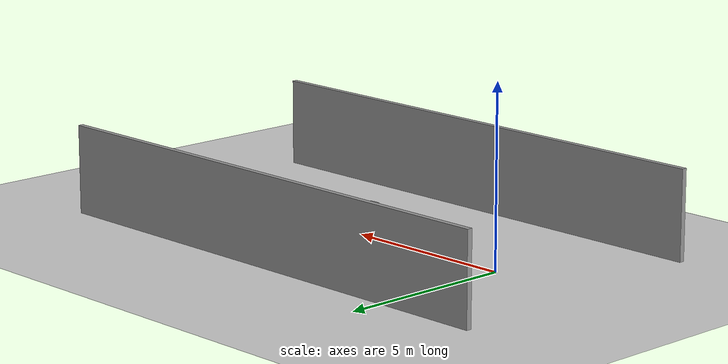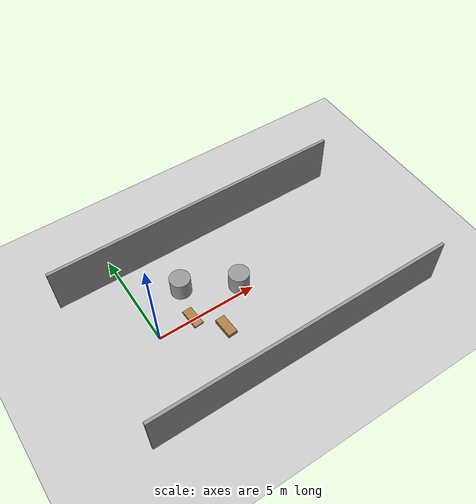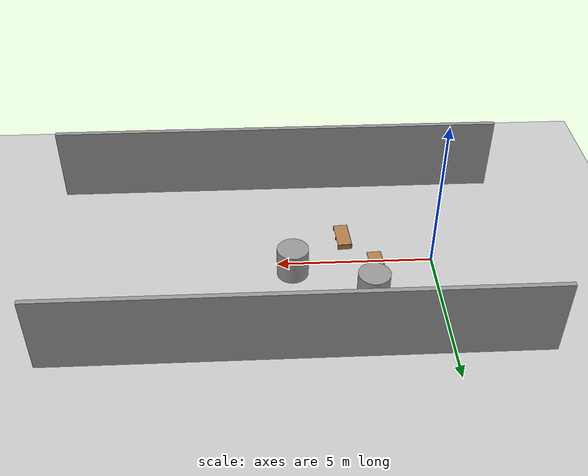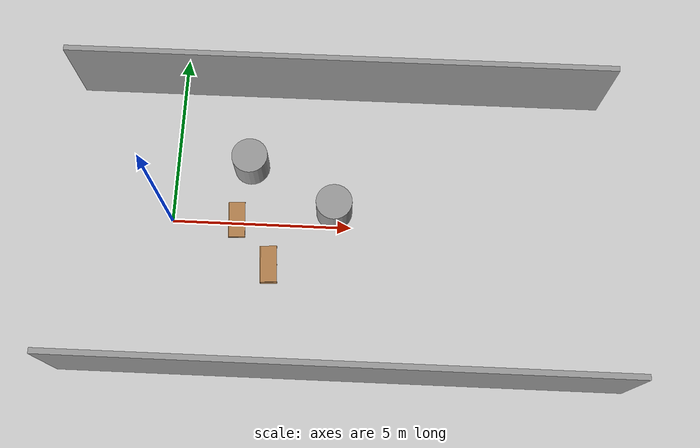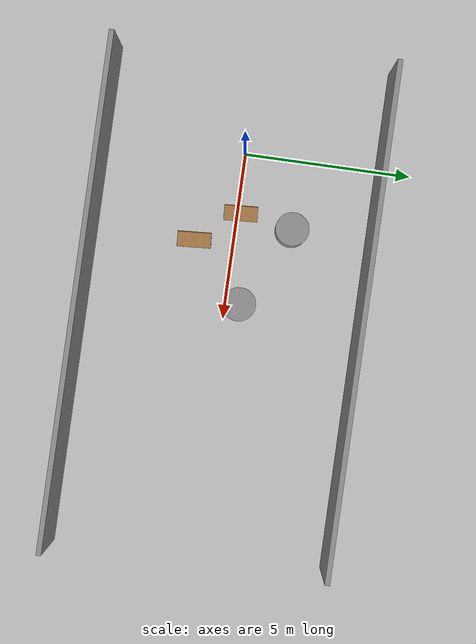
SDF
<sdf version="1.6">
 <world name="default">
  <light name="sun" type="directional">
   <pose>0 0 10 0 -0 0</pose>
   <diffuse>0.8 0.8 0.8 1</diffuse>
   <specular>0.2 0.2 0.2 1</specular>
   <attenuation>
    <range>1000</range>
    <constant>0.9</constant>
    <linear>0.01</linear>
    <quadratic>0.001</quadratic>
   </attenuation>
   <direction>-0.5 0.1 -0.9</direction>
  </light>
  <model name="ground_plane">
   <static>1</static>
   <link name="link">
    <collision name="collision">
     <geometry><plane><normal>0 0 1</normal><size>100 100</size></plane></geometry>
     <surface>
      <contact><collide_bitmask>65535</collide_bitmask></contact>
      <friction><ode><mu>100</mu><mu2>50</mu2></ode></friction>
     </surface>
    </collision>
    <visual name="visual">
     <cast_shadows>0</cast_shadows>
     <geometry><plane><normal>0 0 1</normal><size>100 100</size></plane></geometry>
     <material>
      <script><uri>file://media/materials/scripts/gazebo.material</uri><name>Gazebo/Grey</name></script>
     </material>
    </visual>
   </link>
  </model>
  <gravity>0 0 -9.8</gravity>
  <magnetic_field>6e-06 2.3e-05 -4.2e-05</magnetic_field>
  <atmosphere type="adiabatic"/>
  <physics name="default_physics" default="0" type="ode">
   <max_step_size>0.001</max_step_size>
   <real_time_factor>1</real_time_factor>
   <real_time_update_rate>1000</real_time_update_rate>
  </physics>
  <scene><ambient>0.4 0.4 0.4 1</ambient><background>0.7 0.7 0.7 1</background><shadows>1</shadows></scene>
  <audio><device>default</device></audio>
  <spherical_coordinates>
   <surface_model>EARTH_WGS84</surface_model>
   <latitude_deg>0</latitude_deg>
   <longitude_deg>0</longitude_deg>
   <elevation>0</elevation>
   <heading_deg>0</heading_deg>
  </spherical_coordinates>
  <model name="Untitled">
   <pose>4.53239 4.00567 0 0 -0 0</pose>
   <link name="Wall_1">
    <collision name="Wall_1_Collision">
     <geometry><box><size>15 0.15 2.5</size></box></geometry>
     <pose>0 0 1.25 0 -0 0</pose>
    </collision>
    <visual name="Wall_1_Visual">
     <pose>0 0 1.25 0 -0 0</pose>
     <geometry><box><size>15 0.15 2.5</size></box></geometry>
     <material>
      <script><uri>file://media/materials/scripts/gazebo.material</uri><name>Gazebo/Grey</name></script>
      <ambient>1 1 1 1</ambient>
     </material>
     <meta><layer>0</layer></meta>
    </visual>
   </link>
   <static>1</static>
  </model>
  <model name="Untitled_0">
   <pose>4.82053 -4.18989 0 0 -0 0</pose>
   <link name="Wall_1">
    <collision name="Wall_1_Collision">
     <geometry><box><size>15 0.15 2.5</size></box></geometry>
     <pose>0 0 1.25 0 -0 0</pose>
    </collision>
    <visual name="Wall_1_Visual">
     <pose>0 0 1.25 0 -0 0</pose>
     <geometry><box><size>15 0.15 2.5</size></box></geometry>
     <material>
      <script><uri>file://media/materials/scripts/gazebo.material</uri><name>Gazebo/Grey</name></script>
      <ambient>1 1 1 1</ambient>
     </material>
     <meta><layer>0</layer></meta>
    </visual>
   </link>
   <static>1</static>
  </model>
  <model name="unit_cylinder">
   <pose>2.10757 1.68367 0.499991 0 -0 0</pose>
   <link name="link">
    <inertial>
     <mass>1</mass>
     <inertia><ixx>0.145833</ixx><ixy>0</ixy><ixz>0</ixz><iyy>0.145833</iyy><iyz>0</iyz><izz>0.125</izz></inertia>
    </inertial>
    <collision name="collision">
     <geometry><cylinder><radius>0.5</radius><length>1</length></cylinder></geometry>
    </collision>
    <visual name="visual">
     <geometry><cylinder><radius>0.5</radius><length>1</length></cylinder></geometry>
     <material>
      <script><name>Gazebo/Grey</name><uri>file://media/materials/scripts/gazebo.material</uri></script>
     </material>
    </visual>
   </link>
  </model>
  <model name="unit_cylinder_1">
   <pose>4.5094 0.431106 0.499998 3e-06 -2e-06 0</pose>
   <link name="link">
    <inertial>
     <mass>1</mass>
     <inertia><ixx>0.145833</ixx><ixy>0</ixy><ixz>0</ixz><iyy>0.145833</iyy><iyz>0</iyz><izz>0.125</izz></inertia>
    </inertial>
    <collision name="collision">
     <geometry><cylinder><radius>0.5</radius><length>1</length></cylinder></geometry>
    </collision>
    <visual name="visual">
     <geometry><cylinder><radius>0.5</radius><length>1</length></cylinder></geometry>
     <material>
      <script><name>Gazebo/Grey</name><uri>file://media/materials/scripts/gazebo.material</uri></script>
     </material>
    </visual>
   </link>
  </model>
  <model name="cabinet">
   <static>1</static>
   <link name="cabinet_bottom_plate">
    <inertial>
     <pose>0 0 -1 0 -0 0</pose>
     <inertia><ixx>2.05</ixx><ixy>0</ixy><ixz>0</ixz><iyy>2.05</iyy><iyz>0</iyz><izz>2.05</izz></inertia>
     <mass>25</mass>
    </inertial>
    <collision name="cabinet_bottom_plate_geom">
     <pose>0 0 0.01 0 -0 0</pose>
     <geometry><box><size>0.45 0.45 0.02</size></box></geometry>
    </collision>
    <visual name="cabinet_bottom_plate_geom_visual">
     <pose>0 0 0.01 0 -0 0</pose>
     <geometry><box><size>0.45 0.45 0.02</size></box></geometry>
     <material>
      <script><uri>file://media/materials/scripts/gazebo.material</uri><name>Gazebo/Wood</name></script>
     </material>
    </visual>
    <collision name="cabinet_bottom_plate_geom_cabinet_back_plate">
     <pose>0.235 0 0.51 0 -0 0</pose>
     <geometry><box><size>0.02 0.45 1.02</size></box></geometry>
    </collision>
    <visual name="cabinet_bottom_plate_geom_cabinet_back_plate_visual">
     <pose>0.235 0 0.51 0 -0 0</pose>
     <geometry><box><size>0.02 0.45 1.02</size></box></geometry>
     <material>
      <script><uri>file://media/materials/scripts/gazebo.material</uri><name>Gazebo/Wood</name></script>
     </material>
    </visual>
    <collision name="cabinet_bottom_plate_geom_cabinet_left_plate">
     <pose>0 0.235 0.51 0 -0 0</pose>
     <geometry><box><size>0.45 0.02 1.02</size></box></geometry>
    </collision>
    <visual name="cabinet_bottom_plate_geom_cabinet_left_plate_visual">
     <pose>0 0.235 0.51 0 -0 0</pose>
     <geometry><box><size>0.45 0.02 1.02</size></box></geometry>
     <material>
      <script><uri>file://media/materials/scripts/gazebo.material</uri><name>Gazebo/Wood</name></script>
     </material>
    </visual>
    <collision name="cabinet_bottom_plate_geom_cabinet_middle_plate">
     <pose>0 0 0.51 0 -0 0</pose>
     <geometry><box><size>0.45 0.45 0.02</size></box></geometry>
    </collision>
    <visual name="cabinet_bottom_plate_geom_cabinet_middle_plate_visual">
     <pose>0 0 0.51 0 -0 0</pose>
     <geometry><box><size>0.45 0.45 0.02</size></box></geometry>
     <material>
      <script><uri>file://media/materials/scripts/gazebo.material</uri><name>Gazebo/Wood</name></script>
     </material>
    </visual>
    <collision name="cabinet_bottom_plate_geom_cabinet_right_plate">
     <pose>0 -0.235 0.51 0 -0 0</pose>
     <geometry><box><size>0.45 0.02 1.02</size></box></geometry>
    </collision>
    <visual name="cabinet_bottom_plate_geom_cabinet_right_plate_visual">
     <pose>0 -0.235 0.51 0 -0 0</pose>
     <geometry><box><size>0.45 0.02 1.02</size></box></geometry>
     <material>
      <script><uri>file://media/materials/scripts/gazebo.material</uri><name>Gazebo/Wood</name></script>
     </material>
    </visual>
    <collision name="cabinet_bottom_plate_geom_cabinet_top_plate">
     <pose>0 0 1.01 0 -0 0</pose>
     <geometry><box><size>0.45 0.45 0.02</size></box></geometry>
    </collision>
    <visual name="cabinet_bottom_plate_geom_cabinet_top_plate_visual">
     <pose>0 0 1.01 0 -0 0</pose>
     <geometry><box><size>0.45 0.45 0.02</size></box></geometry>
     <material>
      <script><uri>file://media/materials/scripts/gazebo.material</uri><name>Gazebo/Wood</name></script>
     </material>
    </visual>
   </link>
   <pose>1.75886 0.613618 -0.183109 -1.57049 -0 -3.07894</pose>
  </model>
  <model name="cabinet_clone">
   <static>1</static>
   <link name="cabinet_bottom_plate">
    <inertial>
     <pose>0 0 -1 0 -0 0</pose>
     <inertia><ixx>2.05</ixx><ixy>0</ixy><ixz>0</ixz><iyy>2.05</iyy><iyz>0</iyz><izz>2.05</izz></inertia>
     <mass>25</mass>
    </inertial>
    <collision name="cabinet_bottom_plate_geom">
     <pose>0 0 0.01 0 -0 0</pose>
     <geometry><box><size>0.45 0.45 0.02</size></box></geometry>
    </collision>
    <visual name="cabinet_bottom_plate_geom_visual">
     <pose>0 0 0.01 0 -0 0</pose>
     <geometry><box><size>0.45 0.45 0.02</size></box></geometry>
     <material>
      <script><uri>file://media/materials/scripts/gazebo.material</uri><name>Gazebo/Wood</name></script>
     </material>
    </visual>
    <collision name="cabinet_bottom_plate_geom_cabinet_back_plate">
     <pose>0.235 0 0.51 0 -0 0</pose>
     <geometry><box><size>0.02 0.45 1.02</size></box></geometry>
    </collision>
    <visual name="cabinet_bottom_plate_geom_cabinet_back_plate_visual">
     <pose>0.235 0 0.51 0 -0 0</pose>
     <geometry><box><size>0.02 0.45 1.02</size></box></geometry>
     <material>
      <script><uri>file://media/materials/scripts/gazebo.material</uri><name>Gazebo/Wood</name></script>
     </material>
    </visual>
    <collision name="cabinet_bottom_plate_geom_cabinet_left_plate">
     <pose>0 0.235 0.51 0 -0 0</pose>
     <geometry><box><size>0.45 0.02 1.02</size></box></geometry>
    </collision>
    <visual name="cabinet_bottom_plate_geom_cabinet_left_plate_visual">
     <pose>0 0.235 0.51 0 -0 0</pose>
     <geometry><box><size>0.45 0.02 1.02</size></box></geometry>
     <material>
      <script><uri>file://media/materials/scripts/gazebo.material</uri><name>Gazebo/Wood</name></script>
     </material>
    </visual>
    <collision name="cabinet_bottom_plate_geom_cabinet_middle_plate">
     <pose>0 0 0.51 0 -0 0</pose>
     <geometry><box><size>0.45 0.45 0.02</size></box></geometry>
    </collision>
    <visual name="cabinet_bottom_plate_geom_cabinet_middle_plate_visual">
     <pose>0 0 0.51 0 -0 0</pose>
     <geometry><box><size>0.45 0.45 0.02</size></box></geometry>
     <material>
      <script><uri>file://media/materials/scripts/gazebo.material</uri><name>Gazebo/Wood</name></script>
     </material>
    </visual>
    <collision name="cabinet_bottom_plate_geom_cabinet_right_plate">
     <pose>0 -0.235 0.51 0 -0 0</pose>
     <geometry><box><size>0.45 0.02 1.02</size></box></geometry>
    </collision>
    <visual name="cabinet_bottom_plate_geom_cabinet_right_plate_visual">
     <pose>0 -0.235 0.51 0 -0 0</pose>
     <geometry><box><size>0.45 0.02 1.02</size></box></geometry>
     <material>
      <script><uri>file://media/materials/scripts/gazebo.material</uri><name>Gazebo/Wood</name></script>
     </material>
    </visual>
    <collision name="cabinet_bottom_plate_geom_cabinet_top_plate">
     <pose>0 0 1.01 0 -0 0</pose>
     <geometry><box><size>0.45 0.45 0.02</size></box></geometry>
    </collision>
    <visual name="cabinet_bottom_plate_geom_cabinet_top_plate_visual">
     <pose>0 0 1.01 0 -0 0</pose>
     <geometry><box><size>0.45 0.45 0.02</size></box></geometry>
     <material>
      <script><uri>file://media/materials/scripts/gazebo.material</uri><name>Gazebo/Wood</name></script>
     </material>
    </visual>
   </link>
   <pose>2.74074 -0.665814 -0.063516 -1.57049 -0 -3.07894</pose>
  </model>
 </world>
</sdf>
